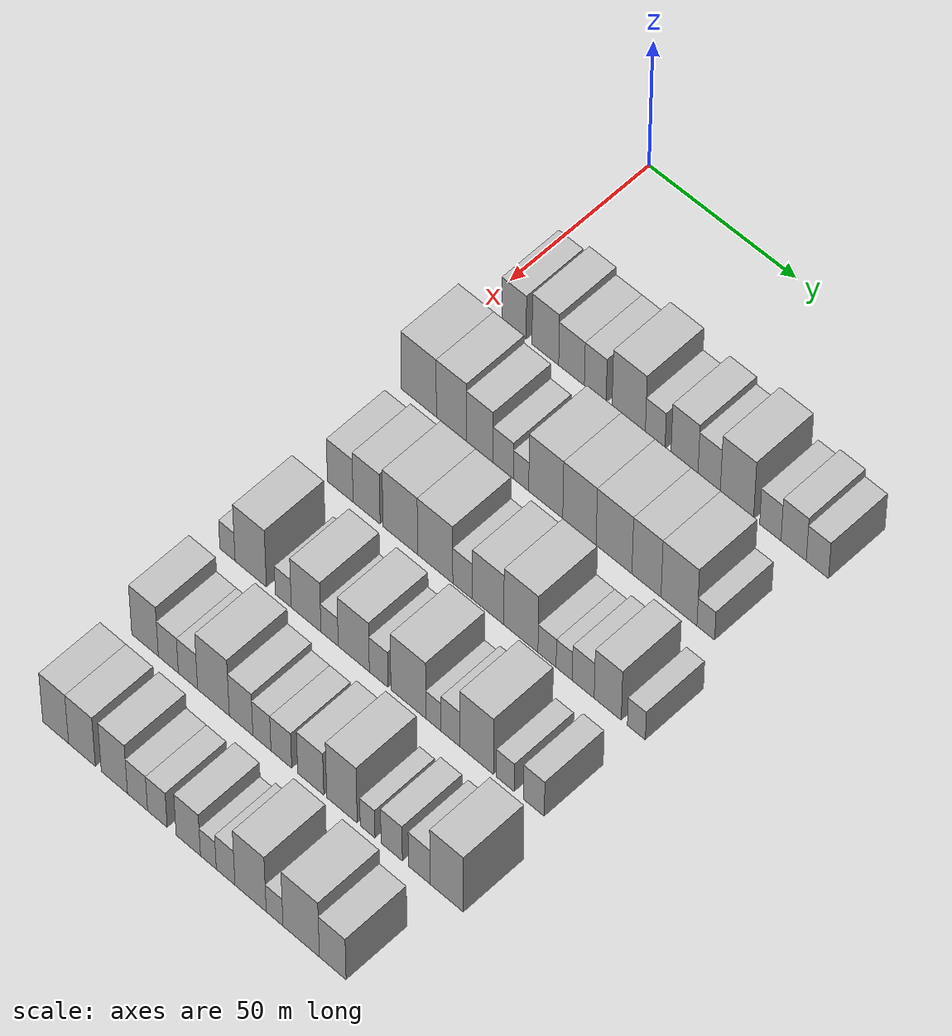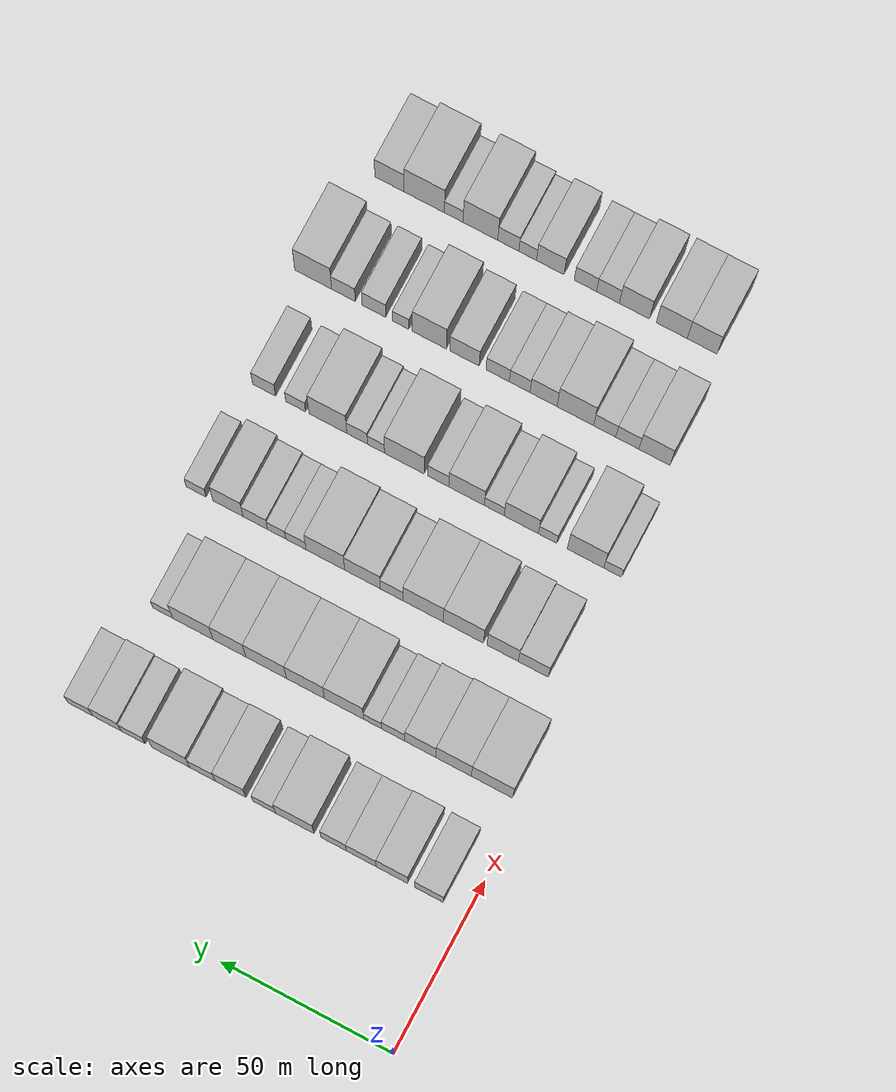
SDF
<sdf version="1.6">
 <world name="default">
  <model name="building_56">
   <static>1</static>
   <pose>50.0000 11.0267 0 0.000000 0.000000 0.000000</pose>
   <link name="link">
    <pose>0 0 9.00 0 0 0</pose>
    <collision name="collision"><geometry><box><size>20.0000 8.3143 18.0000</size></box></geometry></collision>
    <visual name="visual">
     <cast_shadows>0</cast_shadows>
     <geometry><box><size>20.0000 8.3143 18.0000</size></box></geometry>
     <material>
      <script>
       <uri>model://HANNAS_wall/materials/scripts</uri>
       <uri>model://HANNAS_wall/materials/textures</uri>
       <name>vrc/HANNAS_wall</name>
      </script>
     </material>
    </visual>
   </link>
  </model>
  <model name="building_57">
   <static>1</static>
   <pose>50.0000 21.7299 0 0.000000 0.000000 0.000000</pose>
   <link name="link">
    <pose>0 0 10.50 0 0 0</pose>
    <collision name="collision"><geometry><box><size>20.0000 9.0920 21.0000</size></box></geometry></collision>
    <visual name="visual">
     <cast_shadows>0</cast_shadows>
     <geometry><box><size>20.0000 9.0920 21.0000</size></box></geometry>
     <material>
      <script>
       <uri>model://HANNAS_wall/materials/scripts</uri>
       <uri>model://HANNAS_wall/materials/textures</uri>
       <name>vrc/HANNAS_wall</name>
      </script>
     </material>
    </visual>
   </link>
  </model>
  <model name="building_58">
   <static>1</static>
   <pose>50.0000 30.6359 0 0.000000 0.000000 0.000000</pose>
   <link name="link">
    <pose>0 0 9.00 0 0 0</pose>
    <collision name="collision"><geometry><box><size>20.0000 8.7200 18.0000</size></box></geometry></collision>
    <visual name="visual">
     <cast_shadows>0</cast_shadows>
     <geometry><box><size>20.0000 8.7200 18.0000</size></box></geometry>
     <material>
      <script>
       <uri>model://HANNAS_wall/materials/scripts</uri>
       <uri>model://HANNAS_wall/materials/textures</uri>
       <name>vrc/HANNAS_wall</name>
      </script>
     </material>
    </visual>
   </link>
  </model>
  <model name="building_59">
   <static>1</static>
   <pose>50.0000 38.6688 0 0.000000 0.000000 0.000000</pose>
   <link name="link">
    <pose>0 0 9.00 0 0 0</pose>
    <collision name="collision"><geometry><box><size>20.0000 7.3459 18.0000</size></box></geometry></collision>
    <visual name="visual">
     <cast_shadows>0</cast_shadows>
     <geometry><box><size>20.0000 7.3459 18.0000</size></box></geometry>
     <material>
      <script>
       <uri>model://HANNAS_wall/materials/scripts</uri>
       <uri>model://HANNAS_wall/materials/textures</uri>
       <name>vrc/HANNAS_wall</name>
      </script>
     </material>
    </visual>
   </link>
  </model>
  <model name="building_60">
   <static>1</static>
   <pose>50.0000 49.9367 0 0.000000 0.000000 0.000000</pose>
   <link name="link">
    <pose>0 0 12.00 0 0 0</pose>
    <collision name="collision"><geometry><box><size>20.0000 11.1899 24.0000</size></box></geometry></collision>
    <visual name="visual">
     <cast_shadows>0</cast_shadows>
     <geometry><box><size>20.0000 11.1899 24.0000</size></box></geometry>
     <material>
      <script>
       <uri>model://HANNAS_wall/materials/scripts</uri>
       <uri>model://HANNAS_wall/materials/textures</uri>
       <name>vrc/HANNAS_wall</name>
      </script>
     </material>
    </visual>
   </link>
  </model>
  <model name="building_61">
   <static>1</static>
   <pose>50.0000 58.8382 0 0.000000 0.000000 0.000000</pose>
   <link name="link">
    <pose>0 0 7.50 0 0 0</pose>
    <collision name="collision"><geometry><box><size>20.0000 6.6130 15.0000</size></box></geometry></collision>
    <visual name="visual">
     <cast_shadows>0</cast_shadows>
     <geometry><box><size>20.0000 6.6130 15.0000</size></box></geometry>
     <material>
      <script>
       <uri>model://HANNAS_wall/materials/scripts</uri>
       <uri>model://HANNAS_wall/materials/textures</uri>
       <name>vrc/HANNAS_wall</name>
      </script>
     </material>
    </visual>
   </link>
  </model>
  <model name="building_62">
   <static>1</static>
   <pose>50.0000 68.6400 0 0.000000 0.000000 0.000000</pose>
   <link name="link">
    <pose>0 0 10.50 0 0 0</pose>
    <collision name="collision"><geometry><box><size>20.0000 8.9907 21.0000</size></box></geometry></collision>
    <visual name="visual">
     <cast_shadows>0</cast_shadows>
     <geometry><box><size>20.0000 8.9907 21.0000</size></box></geometry>
     <material>
      <script>
       <uri>model://HANNAS_wall/materials/scripts</uri>
       <uri>model://HANNAS_wall/materials/textures</uri>
       <name>vrc/HANNAS_wall</name>
      </script>
     </material>
    </visual>
   </link>
  </model>
  <model name="building_63">
   <static>1</static>
   <pose>50.0000 76.8447 0 0.000000 0.000000 0.000000</pose>
   <link name="link">
    <pose>0 0 9.00 0 0 0</pose>
    <collision name="collision"><geometry><box><size>20.0000 7.4186 18.0000</size></box></geometry></collision>
    <visual name="visual">
     <cast_shadows>0</cast_shadows>
     <geometry><box><size>20.0000 7.4186 18.0000</size></box></geometry>
     <material>
      <script>
       <uri>model://HANNAS_wall/materials/scripts</uri>
       <uri>model://HANNAS_wall/materials/textures</uri>
       <name>vrc/HANNAS_wall</name>
      </script>
     </material>
    </visual>
   </link>
  </model>
  <model name="building_64">
   <static>1</static>
   <pose>50.0000 86.0745 0 0.000000 0.000000 0.000000</pose>
   <link name="link">
    <pose>0 0 12.00 0 0 0</pose>
    <collision name="collision"><geometry><box><size>20.0000 11.0412 24.0000</size></box></geometry></collision>
    <visual name="visual">
     <cast_shadows>0</cast_shadows>
     <geometry><box><size>20.0000 11.0412 24.0000</size></box></geometry>
     <material>
      <script>
       <uri>model://HANNAS_wall/materials/scripts</uri>
       <uri>model://HANNAS_wall/materials/textures</uri>
       <name>vrc/HANNAS_wall</name>
      </script>
     </material>
    </visual>
   </link>
  </model>
  <model name="building_65">
   <static>1</static>
   <pose>50.0000 97.1075 0 0.000000 0.000000 0.000000</pose>
   <link name="link">
    <pose>0 0 7.50 0 0 0</pose>
    <collision name="collision"><geometry><box><size>20.0000 7.0248 15.0000</size></box></geometry></collision>
    <visual name="visual">
     <cast_shadows>0</cast_shadows>
     <geometry><box><size>20.0000 7.0248 15.0000</size></box></geometry>
     <material>
      <script>
       <uri>model://HANNAS_wall/materials/scripts</uri>
       <uri>model://HANNAS_wall/materials/textures</uri>
       <name>vrc/HANNAS_wall</name>
      </script>
     </material>
    </visual>
   </link>
  </model>
  <model name="building_66">
   <static>1</static>
   <pose>50.0000 104.7695 0 0.000000 0.000000 0.000000</pose>
   <link name="link">
    <pose>0 0 9.00 0 0 0</pose>
    <collision name="collision"><geometry><box><size>20.0000 8.2992 18.0000</size></box></geometry></collision>
    <visual name="visual">
     <cast_shadows>0</cast_shadows>
     <geometry><box><size>20.0000 8.2992 18.0000</size></box></geometry>
     <material>
      <script>
       <uri>model://HANNAS_wall/materials/scripts</uri>
       <uri>model://HANNAS_wall/materials/textures</uri>
       <name>vrc/HANNAS_wall</name>
      </script>
     </material>
    </visual>
   </link>
  </model>
  <model name="building_67">
   <static>1</static>
   <pose>50.0000 112.5774 0 0.000000 0.000000 0.000000</pose>
   <link name="link">
    <pose>0 0 7.50 0 0 0</pose>
    <collision name="collision"><geometry><box><size>20.0000 7.3165 15.0000</size></box></geometry></collision>
    <visual name="visual">
     <cast_shadows>0</cast_shadows>
     <geometry><box><size>20.0000 7.3165 15.0000</size></box></geometry>
     <material>
      <script>
       <uri>model://HANNAS_wall/materials/scripts</uri>
       <uri>model://HANNAS_wall/materials/textures</uri>
       <name>vrc/HANNAS_wall</name>
      </script>
     </material>
    </visual>
   </link>
  </model>
  <model name="building_180">
   <static>1</static>
   <pose>82.0000 9.7335 0 0.000000 0.000000 0.000000</pose>
   <link name="link">
    <pose>0 0 12.00 0 0 0</pose>
    <collision name="collision"><geometry><box><size>20.0000 11.9673 24.0000</size></box></geometry></collision>
    <visual name="visual">
     <cast_shadows>0</cast_shadows>
     <geometry><box><size>20.0000 11.9673 24.0000</size></box></geometry>
     <material>
      <script>
       <uri>model://HANNAS_wall/materials/scripts</uri>
       <uri>model://HANNAS_wall/materials/textures</uri>
       <name>vrc/HANNAS_wall</name>
      </script>
     </material>
    </visual>
   </link>
  </model>
  <model name="building_181">
   <static>1</static>
   <pose>82.0000 20.8601 0 0.000000 0.000000 0.000000</pose>
   <link name="link">
    <pose>0 0 12.00 0 0 0</pose>
    <collision name="collision"><geometry><box><size>20.0000 10.2859 24.0000</size></box></geometry></collision>
    <visual name="visual">
     <cast_shadows>0</cast_shadows>
     <geometry><box><size>20.0000 10.2859 24.0000</size></box></geometry>
     <material>
      <script>
       <uri>model://HANNAS_wall/materials/scripts</uri>
       <uri>model://HANNAS_wall/materials/textures</uri>
       <name>vrc/HANNAS_wall</name>
      </script>
     </material>
    </visual>
   </link>
  </model>
  <model name="building_182">
   <static>1</static>
   <pose>82.0000 30.4940 0 0.000000 0.000000 0.000000</pose>
   <link name="link">
    <pose>0 0 10.50 0 0 0</pose>
    <collision name="collision"><geometry><box><size>20.0000 8.9818 21.0000</size></box></geometry></collision>
    <visual name="visual">
     <cast_shadows>0</cast_shadows>
     <geometry><box><size>20.0000 8.9818 21.0000</size></box></geometry>
     <material>
      <script>
       <uri>model://HANNAS_wall/materials/scripts</uri>
       <uri>model://HANNAS_wall/materials/textures</uri>
       <name>vrc/HANNAS_wall</name>
      </script>
     </material>
    </visual>
   </link>
  </model>
  <model name="building_183">
   <static>1</static>
   <pose>82.0000 38.4248 0 0.000000 0.000000 0.000000</pose>
   <link name="link">
    <pose>0 0 7.50 0 0 0</pose>
    <collision name="collision"><geometry><box><size>20.0000 6.8798 15.0000</size></box></geometry></collision>
    <visual name="visual">
     <cast_shadows>0</cast_shadows>
     <geometry><box><size>20.0000 6.8798 15.0000</size></box></geometry>
     <material>
      <script>
       <uri>model://HANNAS_wall/materials/scripts</uri>
       <uri>model://HANNAS_wall/materials/textures</uri>
       <name>vrc/HANNAS_wall</name>
      </script>
     </material>
    </visual>
   </link>
  </model>
  <model name="building_184">
   <static>1</static>
   <pose>82.0000 44.4490 0 0.000000 0.000000 0.000000</pose>
   <link name="link">
    <pose>0 0 6.00 0 0 0</pose>
    <collision name="collision"><geometry><box><size>20.0000 5.1686 12.0000</size></box></geometry></collision>
    <visual name="visual">
     <cast_shadows>0</cast_shadows>
     <geometry><box><size>20.0000 5.1686 12.0000</size></box></geometry>
     <material>
      <script>
       <uri>model://HANNAS_wall/materials/scripts</uri>
       <uri>model://HANNAS_wall/materials/textures</uri>
       <name>vrc/HANNAS_wall</name>
      </script>
     </material>
    </visual>
   </link>
  </model>
  <model name="building_185">
   <static>1</static>
   <pose>82.0000 52.7431 0 0.000000 0.000000 0.000000</pose>
   <link name="link">
    <pose>0 0 12.00 0 0 0</pose>
    <collision name="collision"><geometry><box><size>20.0000 11.4195 24.0000</size></box></geometry></collision>
    <visual name="visual">
     <cast_shadows>0</cast_shadows>
     <geometry><box><size>20.0000 11.4195 24.0000</size></box></geometry>
     <material>
      <script>
       <uri>model://HANNAS_wall/materials/scripts</uri>
       <uri>model://HANNAS_wall/materials/textures</uri>
       <name>vrc/HANNAS_wall</name>
      </script>
     </material>
    </visual>
   </link>
  </model>
  <model name="building_186">
   <static>1</static>
   <pose>82.0000 64.0200 0 0.000000 0.000000 0.000000</pose>
   <link name="link">
    <pose>0 0 12.00 0 0 0</pose>
    <collision name="collision"><geometry><box><size>20.0000 11.1344 24.0000</size></box></geometry></collision>
    <visual name="visual">
     <cast_shadows>0</cast_shadows>
     <geometry><box><size>20.0000 11.1344 24.0000</size></box></geometry>
     <material>
      <script>
       <uri>model://HANNAS_wall/materials/scripts</uri>
       <uri>model://HANNAS_wall/materials/textures</uri>
       <name>vrc/HANNAS_wall</name>
      </script>
     </material>
    </visual>
   </link>
  </model>
  <model name="building_187">
   <static>1</static>
   <pose>82.0000 75.5389 0 0.000000 0.000000 0.000000</pose>
   <link name="link">
    <pose>0 0 12.00 0 0 0</pose>
    <collision name="collision"><geometry><box><size>20.0000 11.9035 24.0000</size></box></geometry></collision>
    <visual name="visual">
     <cast_shadows>0</cast_shadows>
     <geometry><box><size>20.0000 11.9035 24.0000</size></box></geometry>
     <material>
      <script>
       <uri>model://HANNAS_wall/materials/scripts</uri>
       <uri>model://HANNAS_wall/materials/textures</uri>
       <name>vrc/HANNAS_wall</name>
      </script>
     </material>
    </visual>
   </link>
  </model>
  <model name="building_188">
   <static>1</static>
   <pose>82.0000 86.3078 0 0.000000 0.000000 0.000000</pose>
   <link name="link">
    <pose>0 0 12.00 0 0 0</pose>
    <collision name="collision"><geometry><box><size>20.0000 9.6342 24.0000</size></box></geometry></collision>
    <visual name="visual">
     <cast_shadows>0</cast_shadows>
     <geometry><box><size>20.0000 9.6342 24.0000</size></box></geometry>
     <material>
      <script>
       <uri>model://HANNAS_wall/materials/scripts</uri>
       <uri>model://HANNAS_wall/materials/textures</uri>
       <name>vrc/HANNAS_wall</name>
      </script>
     </material>
    </visual>
   </link>
  </model>
  <model name="building_189">
   <static>1</static>
   <pose>82.0000 97.0439 0 0.000000 0.000000 0.000000</pose>
   <link name="link">
    <pose>0 0 12.00 0 0 0</pose>
    <collision name="collision"><geometry><box><size>20.0000 11.8379 24.0000</size></box></geometry></collision>
    <visual name="visual">
     <cast_shadows>0</cast_shadows>
     <geometry><box><size>20.0000 11.8379 24.0000</size></box></geometry>
     <material>
      <script>
       <uri>model://HANNAS_wall/materials/scripts</uri>
       <uri>model://HANNAS_wall/materials/textures</uri>
       <name>vrc/HANNAS_wall</name>
      </script>
     </material>
    </visual>
   </link>
  </model>
  <model name="building_190">
   <static>1</static>
   <pose>82.0000 105.8691 0 0.000000 0.000000 0.000000</pose>
   <link name="link">
    <pose>0 0 6.00 0 0 0</pose>
    <collision name="collision"><geometry><box><size>20.0000 5.8126 12.0000</size></box></geometry></collision>
    <visual name="visual">
     <cast_shadows>0</cast_shadows>
     <geometry><box><size>20.0000 5.8126 12.0000</size></box></geometry>
     <material>
      <script>
       <uri>model://HANNAS_wall/materials/scripts</uri>
       <uri>model://HANNAS_wall/materials/textures</uri>
       <name>vrc/HANNAS_wall</name>
      </script>
     </material>
    </visual>
   </link>
  </model>
  <model name="building_304">
   <static>1</static>
   <pose>114.0000 14.5427 0 0.000000 0.000000 0.000000</pose>
   <link name="link">
    <pose>0 0 9.00 0 0 0</pose>
    <collision name="collision"><geometry><box><size>20.0000 8.7635 18.0000</size></box></geometry></collision>
    <visual name="visual">
     <cast_shadows>0</cast_shadows>
     <geometry><box><size>20.0000 8.7635 18.0000</size></box></geometry>
     <material>
      <script>
       <uri>model://HANNAS_wall/materials/scripts</uri>
       <uri>model://HANNAS_wall/materials/textures</uri>
       <name>vrc/HANNAS_wall</name>
      </script>
     </material>
    </visual>
   </link>
  </model>
  <model name="building_305">
   <static>1</static>
   <pose>114.0000 23.5124 0 0.000000 0.000000 0.000000</pose>
   <link name="link">
    <pose>0 0 10.50 0 0 0</pose>
    <collision name="collision"><geometry><box><size>20.0000 9.1759 21.0000</size></box></geometry></collision>
    <visual name="visual">
     <cast_shadows>0</cast_shadows>
     <geometry><box><size>20.0000 9.1759 21.0000</size></box></geometry>
     <material>
      <script>
       <uri>model://HANNAS_wall/materials/scripts</uri>
       <uri>model://HANNAS_wall/materials/textures</uri>
       <name>vrc/HANNAS_wall</name>
      </script>
     </material>
    </visual>
   </link>
  </model>
  <model name="building_306">
   <static>1</static>
   <pose>114.0000 34.9645 0 0.000000 0.000000 0.000000</pose>
   <link name="link">
    <pose>0 0 12.00 0 0 0</pose>
    <collision name="collision"><geometry><box><size>20.0000 11.7283 24.0000</size></box></geometry></collision>
    <visual name="visual">
     <cast_shadows>0</cast_shadows>
     <geometry><box><size>20.0000 11.7283 24.0000</size></box></geometry>
     <material>
      <script>
       <uri>model://HANNAS_wall/materials/scripts</uri>
       <uri>model://HANNAS_wall/materials/textures</uri>
       <name>vrc/HANNAS_wall</name>
      </script>
     </material>
    </visual>
   </link>
  </model>
  <model name="building_307">
   <static>1</static>
   <pose>114.0000 46.7430 0 0.000000 0.000000 0.000000</pose>
   <link name="link">
    <pose>0 0 12.00 0 0 0</pose>
    <collision name="collision"><geometry><box><size>20.0000 11.8288 24.0000</size></box></geometry></collision>
    <visual name="visual">
     <cast_shadows>0</cast_shadows>
     <geometry><box><size>20.0000 11.8288 24.0000</size></box></geometry>
     <material>
      <script>
       <uri>model://HANNAS_wall/materials/scripts</uri>
       <uri>model://HANNAS_wall/materials/textures</uri>
       <name>vrc/HANNAS_wall</name>
      </script>
     </material>
    </visual>
   </link>
  </model>
  <model name="building_308">
   <static>1</static>
   <pose>114.0000 55.9606 0 0.000000 0.000000 0.000000</pose>
   <link name="link">
    <pose>0 0 7.50 0 0 0</pose>
    <collision name="collision"><geometry><box><size>20.0000 6.6064 15.0000</size></box></geometry></collision>
    <visual name="visual">
     <cast_shadows>0</cast_shadows>
     <geometry><box><size>20.0000 6.6064 15.0000</size></box></geometry>
     <material>
      <script>
       <uri>model://HANNAS_wall/materials/scripts</uri>
       <uri>model://HANNAS_wall/materials/textures</uri>
       <name>vrc/HANNAS_wall</name>
      </script>
     </material>
    </visual>
   </link>
  </model>
  <model name="building_309">
   <static>1</static>
   <pose>114.0000 64.4863 0 0.000000 0.000000 0.000000</pose>
   <link name="link">
    <pose>0 0 10.50 0 0 0</pose>
    <collision name="collision"><geometry><box><size>20.0000 10.4450 21.0000</size></box></geometry></collision>
    <visual name="visual">
     <cast_shadows>0</cast_shadows>
     <geometry><box><size>20.0000 10.4450 21.0000</size></box></geometry>
     <material>
      <script>
       <uri>model://HANNAS_wall/materials/scripts</uri>
       <uri>model://HANNAS_wall/materials/textures</uri>
       <name>vrc/HANNAS_wall</name>
      </script>
     </material>
    </visual>
   </link>
  </model>
  <model name="building_310">
   <static>1</static>
   <pose>114.0000 75.3846 0 0.000000 0.000000 0.000000</pose>
   <link name="link">
    <pose>0 0 12.00 0 0 0</pose>
    <collision name="collision"><geometry><box><size>20.0000 11.3515 24.0000</size></box></geometry></collision>
    <visual name="visual">
     <cast_shadows>0</cast_shadows>
     <geometry><box><size>20.0000 11.3515 24.0000</size></box></geometry>
     <material>
      <script>
       <uri>model://HANNAS_wall/materials/scripts</uri>
       <uri>model://HANNAS_wall/materials/textures</uri>
       <name>vrc/HANNAS_wall</name>
      </script>
     </material>
    </visual>
   </link>
  </model>
  <model name="building_311">
   <static>1</static>
   <pose>114.0000 84.0602 0 0.000000 0.000000 0.000000</pose>
   <link name="link">
    <pose>0 0 6.00 0 0 0</pose>
    <collision name="collision"><geometry><box><size>20.0000 5.9997 12.0000</size></box></geometry></collision>
    <visual name="visual">
     <cast_shadows>0</cast_shadows>
     <geometry><box><size>20.0000 5.9997 12.0000</size></box></geometry>
     <material>
      <script>
       <uri>model://HANNAS_wall/materials/scripts</uri>
       <uri>model://HANNAS_wall/materials/textures</uri>
       <name>vrc/HANNAS_wall</name>
      </script>
     </material>
    </visual>
   </link>
  </model>
  <model name="building_312">
   <static>1</static>
   <pose>114.0000 89.7220 0 0.000000 0.000000 0.000000</pose>
   <link name="link">
    <pose>0 0 6.00 0 0 0</pose>
    <collision name="collision"><geometry><box><size>20.0000 5.3241 12.0000</size></box></geometry></collision>
    <visual name="visual">
     <cast_shadows>0</cast_shadows>
     <geometry><box><size>20.0000 5.3241 12.0000</size></box></geometry>
     <material>
      <script>
       <uri>model://HANNAS_wall/materials/scripts</uri>
       <uri>model://HANNAS_wall/materials/textures</uri>
       <name>vrc/HANNAS_wall</name>
      </script>
     </material>
    </visual>
   </link>
  </model>
  <model name="building_313">
   <static>1</static>
   <pose>114.0000 95.9960 0 0.000000 0.000000 0.000000</pose>
   <link name="link">
    <pose>0 0 7.50 0 0 0</pose>
    <collision name="collision"><geometry><box><size>20.0000 7.2240 15.0000</size></box></geometry></collision>
    <visual name="visual">
     <cast_shadows>0</cast_shadows>
     <geometry><box><size>20.0000 7.2240 15.0000</size></box></geometry>
     <material>
      <script>
       <uri>model://HANNAS_wall/materials/scripts</uri>
       <uri>model://HANNAS_wall/materials/textures</uri>
       <name>vrc/HANNAS_wall</name>
      </script>
     </material>
    </visual>
   </link>
  </model>
  <model name="building_314">
   <static>1</static>
   <pose>114.0000 104.0517 0 0.000000 0.000000 0.000000</pose>
   <link name="link">
    <pose>0 0 10.50 0 0 0</pose>
    <collision name="collision"><geometry><box><size>20.0000 8.8873 21.0000</size></box></geometry></collision>
    <visual name="visual">
     <cast_shadows>0</cast_shadows>
     <geometry><box><size>20.0000 8.8873 21.0000</size></box></geometry>
     <material>
      <script>
       <uri>model://HANNAS_wall/materials/scripts</uri>
       <uri>model://HANNAS_wall/materials/textures</uri>
       <name>vrc/HANNAS_wall</name>
      </script>
     </material>
    </visual>
   </link>
  </model>
  <model name="building_315">
   <static>1</static>
   <pose>114.0000 113.4347 0 0.000000 0.000000 0.000000</pose>
   <link name="link">
    <pose>0 0 6.00 0 0 0</pose>
    <collision name="collision"><geometry><box><size>20.0000 5.8788 12.0000</size></box></geometry></collision>
    <visual name="visual">
     <cast_shadows>0</cast_shadows>
     <geometry><box><size>20.0000 5.8788 12.0000</size></box></geometry>
     <material>
      <script>
       <uri>model://HANNAS_wall/materials/scripts</uri>
       <uri>model://HANNAS_wall/materials/textures</uri>
       <name>vrc/HANNAS_wall</name>
      </script>
     </material>
    </visual>
   </link>
  </model>
  <model name="building_422">
   <static>1</static>
   <pose>146.0000 8.1309 0 0.000000 0.000000 0.000000</pose>
   <link name="link">
    <pose>0 0 6.00 0 0 0</pose>
    <collision name="collision"><geometry><box><size>20.0000 5.2154 12.0000</size></box></geometry></collision>
    <visual name="visual">
     <cast_shadows>0</cast_shadows>
     <geometry><box><size>20.0000 5.2154 12.0000</size></box></geometry>
     <material>
      <script>
       <uri>model://HANNAS_wall/materials/scripts</uri>
       <uri>model://HANNAS_wall/materials/textures</uri>
       <name>vrc/HANNAS_wall</name>
      </script>
     </material>
    </visual>
   </link>
  </model>
  <model name="building_423">
   <static>1</static>
   <pose>146.0000 16.0932 0 0.000000 0.000000 0.000000</pose>
   <link name="link">
    <pose>0 0 12.00 0 0 0</pose>
    <collision name="collision"><geometry><box><size>20.0000 10.7092 24.0000</size></box></geometry></collision>
    <visual name="visual">
     <cast_shadows>0</cast_shadows>
     <geometry><box><size>20.0000 10.7092 24.0000</size></box></geometry>
     <material>
      <script>
       <uri>model://HANNAS_wall/materials/scripts</uri>
       <uri>model://HANNAS_wall/materials/textures</uri>
       <name>vrc/HANNAS_wall</name>
      </script>
     </material>
    </visual>
   </link>
  </model>
  <model name="building_424">
   <static>1</static>
   <pose>146.0000 27.1707 0 0.000000 0.000000 0.000000</pose>
   <link name="link">
    <pose>0 0 6.00 0 0 0</pose>
    <collision name="collision"><geometry><box><size>20.0000 5.4456 12.0000</size></box></geometry></collision>
    <visual name="visual">
     <cast_shadows>0</cast_shadows>
     <geometry><box><size>20.0000 5.4456 12.0000</size></box></geometry>
     <material>
      <script>
       <uri>model://HANNAS_wall/materials/scripts</uri>
       <uri>model://HANNAS_wall/materials/textures</uri>
       <name>vrc/HANNAS_wall</name>
      </script>
     </material>
    </visual>
   </link>
  </model>
  <model name="building_425">
   <static>1</static>
   <pose>146.0000 34.9148 0 0.000000 0.000000 0.000000</pose>
   <link name="link">
    <pose>0 0 10.50 0 0 0</pose>
    <collision name="collision"><geometry><box><size>20.0000 10.0427 21.0000</size></box></geometry></collision>
    <visual name="visual">
     <cast_shadows>0</cast_shadows>
     <geometry><box><size>20.0000 10.0427 21.0000</size></box></geometry>
     <material>
      <script>
       <uri>model://HANNAS_wall/materials/scripts</uri>
       <uri>model://HANNAS_wall/materials/textures</uri>
       <name>vrc/HANNAS_wall</name>
      </script>
     </material>
    </visual>
   </link>
  </model>
  <model name="building_426">
   <static>1</static>
   <pose>146.0000 42.8468 0 0.000000 0.000000 0.000000</pose>
   <link name="link">
    <pose>0 0 6.00 0 0 0</pose>
    <collision name="collision"><geometry><box><size>20.0000 5.8213 12.0000</size></box></geometry></collision>
    <visual name="visual">
     <cast_shadows>0</cast_shadows>
     <geometry><box><size>20.0000 5.8213 12.0000</size></box></geometry>
     <material>
      <script>
       <uri>model://HANNAS_wall/materials/scripts</uri>
       <uri>model://HANNAS_wall/materials/textures</uri>
       <name>vrc/HANNAS_wall</name>
      </script>
     </material>
    </visual>
   </link>
  </model>
  <model name="building_427">
   <static>1</static>
   <pose>146.0000 50.9816 0 0.000000 0.000000 0.000000</pose>
   <link name="link">
    <pose>0 0 10.50 0 0 0</pose>
    <collision name="collision"><geometry><box><size>20.0000 10.4484 21.0000</size></box></geometry></collision>
    <visual name="visual">
     <cast_shadows>0</cast_shadows>
     <geometry><box><size>20.0000 10.4484 21.0000</size></box></geometry>
     <material>
      <script>
       <uri>model://HANNAS_wall/materials/scripts</uri>
       <uri>model://HANNAS_wall/materials/textures</uri>
       <name>vrc/HANNAS_wall</name>
      </script>
     </material>
    </visual>
   </link>
  </model>
  <model name="building_428">
   <static>1</static>
   <pose>146.0000 59.3180 0 0.000000 0.000000 0.000000</pose>
   <link name="link">
    <pose>0 0 7.50 0 0 0</pose>
    <collision name="collision"><geometry><box><size>20.0000 6.2244 15.0000</size></box></geometry></collision>
    <visual name="visual">
     <cast_shadows>0</cast_shadows>
     <geometry><box><size>20.0000 6.2244 15.0000</size></box></geometry>
     <material>
      <script>
       <uri>model://HANNAS_wall/materials/scripts</uri>
       <uri>model://HANNAS_wall/materials/textures</uri>
       <name>vrc/HANNAS_wall</name>
      </script>
     </material>
    </visual>
   </link>
  </model>
  <model name="building_429">
   <static>1</static>
   <pose>146.0000 69.2566 0 0.000000 0.000000 0.000000</pose>
   <link name="link">
    <pose>0 0 12.00 0 0 0</pose>
    <collision name="collision"><geometry><box><size>20.0000 11.6528 24.0000</size></box></geometry></collision>
    <visual name="visual">
     <cast_shadows>0</cast_shadows>
     <geometry><box><size>20.0000 11.6528 24.0000</size></box></geometry>
     <material>
      <script>
       <uri>model://HANNAS_wall/materials/scripts</uri>
       <uri>model://HANNAS_wall/materials/textures</uri>
       <name>vrc/HANNAS_wall</name>
      </script>
     </material>
    </visual>
   </link>
  </model>
  <model name="building_430">
   <static>1</static>
   <pose>146.0000 77.5924 0 0.000000 0.000000 0.000000</pose>
   <link name="link">
    <pose>0 0 6.00 0 0 0</pose>
    <collision name="collision"><geometry><box><size>20.0000 5.0188 12.0000</size></box></geometry></collision>
    <visual name="visual">
     <cast_shadows>0</cast_shadows>
     <geometry><box><size>20.0000 5.0188 12.0000</size></box></geometry>
     <material>
      <script>
       <uri>model://HANNAS_wall/materials/scripts</uri>
       <uri>model://HANNAS_wall/materials/textures</uri>
       <name>vrc/HANNAS_wall</name>
      </script>
     </material>
    </visual>
   </link>
  </model>
  <model name="building_431">
   <static>1</static>
   <pose>146.0000 83.1686 0 0.000000 0.000000 0.000000</pose>
   <link name="link">
    <pose>0 0 7.50 0 0 0</pose>
    <collision name="collision"><geometry><box><size>20.0000 6.1337 15.0000</size></box></geometry></collision>
    <visual name="visual">
     <cast_shadows>0</cast_shadows>
     <geometry><box><size>20.0000 6.1337 15.0000</size></box></geometry>
     <material>
      <script>
       <uri>model://HANNAS_wall/materials/scripts</uri>
       <uri>model://HANNAS_wall/materials/textures</uri>
       <name>vrc/HANNAS_wall</name>
      </script>
     </material>
    </visual>
   </link>
  </model>
  <model name="building_432">
   <static>1</static>
   <pose>146.0000 91.8049 0 0.000000 0.000000 0.000000</pose>
   <link name="link">
    <pose>0 0 12.00 0 0 0</pose>
    <collision name="collision"><geometry><box><size>20.0000 11.1388 24.0000</size></box></geometry></collision>
    <visual name="visual">
     <cast_shadows>0</cast_shadows>
     <geometry><box><size>20.0000 11.1388 24.0000</size></box></geometry>
     <material>
      <script>
       <uri>model://HANNAS_wall/materials/scripts</uri>
       <uri>model://HANNAS_wall/materials/textures</uri>
       <name>vrc/HANNAS_wall</name>
      </script>
     </material>
    </visual>
   </link>
  </model>
  <model name="building_433">
   <static>1</static>
   <pose>146.0000 101.3119 0 0.000000 0.000000 0.000000</pose>
   <link name="link">
    <pose>0 0 6.00 0 0 0</pose>
    <collision name="collision"><geometry><box><size>20.0000 5.8752 12.0000</size></box></geometry></collision>
    <visual name="visual">
     <cast_shadows>0</cast_shadows>
     <geometry><box><size>20.0000 5.8752 12.0000</size></box></geometry>
     <material>
      <script>
       <uri>model://HANNAS_wall/materials/scripts</uri>
       <uri>model://HANNAS_wall/materials/textures</uri>
       <name>vrc/HANNAS_wall</name>
      </script>
     </material>
    </visual>
   </link>
  </model>
  <model name="building_434">
   <static>1</static>
   <pose>146.0000 110.6543 0 0.000000 0.000000 0.000000</pose>
   <link name="link">
    <pose>0 0 7.50 0 0 0</pose>
    <collision name="collision"><geometry><box><size>20.0000 6.8095 15.0000</size></box></geometry></collision>
    <visual name="visual">
     <cast_shadows>0</cast_shadows>
     <geometry><box><size>20.0000 6.8095 15.0000</size></box></geometry>
     <material>
      <script>
       <uri>model://HANNAS_wall/materials/scripts</uri>
       <uri>model://HANNAS_wall/materials/textures</uri>
       <name>vrc/HANNAS_wall</name>
      </script>
     </material>
    </visual>
   </link>
  </model>
  <model name="building_544">
   <static>1</static>
   <pose>178.0000 12.5955 0 0.000000 0.000000 0.000000</pose>
   <link name="link">
    <pose>0 0 10.50 0 0 0</pose>
    <collision name="collision"><geometry><box><size>20.0000 9.0880 21.0000</size></box></geometry></collision>
    <visual name="visual">
     <cast_shadows>0</cast_shadows>
     <geometry><box><size>20.0000 9.0880 21.0000</size></box></geometry>
     <material>
      <script>
       <uri>model://HANNAS_wall/materials/scripts</uri>
       <uri>model://HANNAS_wall/materials/textures</uri>
       <name>vrc/HANNAS_wall</name>
      </script>
     </material>
    </visual>
   </link>
  </model>
  <model name="building_545">
   <static>1</static>
   <pose>178.0000 20.5444 0 0.000000 0.000000 0.000000</pose>
   <link name="link">
    <pose>0 0 7.50 0 0 0</pose>
    <collision name="collision"><geometry><box><size>20.0000 6.8099 15.0000</size></box></geometry></collision>
    <visual name="visual">
     <cast_shadows>0</cast_shadows>
     <geometry><box><size>20.0000 6.8099 15.0000</size></box></geometry>
     <material>
      <script>
       <uri>model://HANNAS_wall/materials/scripts</uri>
       <uri>model://HANNAS_wall/materials/textures</uri>
       <name>vrc/HANNAS_wall</name>
      </script>
     </material>
    </visual>
   </link>
  </model>
  <model name="building_546">
   <static>1</static>
   <pose>178.0000 27.2206 0 0.000000 0.000000 0.000000</pose>
   <link name="link">
    <pose>0 0 7.50 0 0 0</pose>
    <collision name="collision"><geometry><box><size>20.0000 6.5425 15.0000</size></box></geometry></collision>
    <visual name="visual">
     <cast_shadows>0</cast_shadows>
     <geometry><box><size>20.0000 6.5425 15.0000</size></box></geometry>
     <material>
      <script>
       <uri>model://HANNAS_wall/materials/scripts</uri>
       <uri>model://HANNAS_wall/materials/textures</uri>
       <name>vrc/HANNAS_wall</name>
      </script>
     </material>
    </visual>
   </link>
  </model>
  <model name="building_547">
   <static>1</static>
   <pose>178.0000 35.8593 0 0.000000 0.000000 0.000000</pose>
   <link name="link">
    <pose>0 0 12.00 0 0 0</pose>
    <collision name="collision"><geometry><box><size>20.0000 10.7349 24.0000</size></box></geometry></collision>
    <visual name="visual">
     <cast_shadows>0</cast_shadows>
     <geometry><box><size>20.0000 10.7349 24.0000</size></box></geometry>
     <material>
      <script>
       <uri>model://HANNAS_wall/materials/scripts</uri>
       <uri>model://HANNAS_wall/materials/textures</uri>
       <name>vrc/HANNAS_wall</name>
      </script>
     </material>
    </visual>
   </link>
  </model>
  <model name="building_548">
   <static>1</static>
   <pose>178.0000 45.1974 0 0.000000 0.000000 0.000000</pose>
   <link name="link">
    <pose>0 0 9.00 0 0 0</pose>
    <collision name="collision"><geometry><box><size>20.0000 7.9411 18.0000</size></box></geometry></collision>
    <visual name="visual">
     <cast_shadows>0</cast_shadows>
     <geometry><box><size>20.0000 7.9411 18.0000</size></box></geometry>
     <material>
      <script>
       <uri>model://HANNAS_wall/materials/scripts</uri>
       <uri>model://HANNAS_wall/materials/textures</uri>
       <name>vrc/HANNAS_wall</name>
      </script>
     </material>
    </visual>
   </link>
  </model>
  <model name="building_549">
   <static>1</static>
   <pose>178.0000 52.2040 0 0.000000 0.000000 0.000000</pose>
   <link name="link">
    <pose>0 0 7.50 0 0 0</pose>
    <collision name="collision"><geometry><box><size>20.0000 6.0722 15.0000</size></box></geometry></collision>
    <visual name="visual">
     <cast_shadows>0</cast_shadows>
     <geometry><box><size>20.0000 6.0722 15.0000</size></box></geometry>
     <material>
      <script>
       <uri>model://HANNAS_wall/materials/scripts</uri>
       <uri>model://HANNAS_wall/materials/textures</uri>
       <name>vrc/HANNAS_wall</name>
      </script>
     </material>
    </visual>
   </link>
  </model>
  <model name="building_550">
   <static>1</static>
   <pose>178.0000 58.7081 0 0.000000 0.000000 0.000000</pose>
   <link name="link">
    <pose>0 0 7.50 0 0 0</pose>
    <collision name="collision"><geometry><box><size>20.0000 6.9360 15.0000</size></box></geometry></collision>
    <visual name="visual">
     <cast_shadows>0</cast_shadows>
     <geometry><box><size>20.0000 6.9360 15.0000</size></box></geometry>
     <material>
      <script>
       <uri>model://HANNAS_wall/materials/scripts</uri>
       <uri>model://HANNAS_wall/materials/textures</uri>
       <name>vrc/HANNAS_wall</name>
      </script>
     </material>
    </visual>
   </link>
  </model>
  <model name="building_551">
   <static>1</static>
   <pose>178.0000 68.5214 0 0.000000 0.000000 0.000000</pose>
   <link name="link">
    <pose>0 0 9.00 0 0 0</pose>
    <collision name="collision"><geometry><box><size>20.0000 8.6906 18.0000</size></box></geometry></collision>
    <visual name="visual">
     <cast_shadows>0</cast_shadows>
     <geometry><box><size>20.0000 8.6906 18.0000</size></box></geometry>
     <material>
      <script>
       <uri>model://HANNAS_wall/materials/scripts</uri>
       <uri>model://HANNAS_wall/materials/textures</uri>
       <name>vrc/HANNAS_wall</name>
      </script>
     </material>
    </visual>
   </link>
  </model>
  <model name="building_552">
   <static>1</static>
   <pose>178.0000 78.9021 0 0.000000 0.000000 0.000000</pose>
   <link name="link">
    <pose>0 0 12.00 0 0 0</pose>
    <collision name="collision"><geometry><box><size>20.0000 10.0709 24.0000</size></box></geometry></collision>
    <visual name="visual">
     <cast_shadows>0</cast_shadows>
     <geometry><box><size>20.0000 10.0709 24.0000</size></box></geometry>
     <material>
      <script>
       <uri>model://HANNAS_wall/materials/scripts</uri>
       <uri>model://HANNAS_wall/materials/textures</uri>
       <name>vrc/HANNAS_wall</name>
      </script>
     </material>
    </visual>
   </link>
  </model>
  <model name="building_553">
   <static>1</static>
   <pose>178.0000 87.3794 0 0.000000 0.000000 0.000000</pose>
   <link name="link">
    <pose>0 0 6.00 0 0 0</pose>
    <collision name="collision"><geometry><box><size>20.0000 4.8836 12.0000</size></box></geometry></collision>
    <visual name="visual">
     <cast_shadows>0</cast_shadows>
     <geometry><box><size>20.0000 4.8836 12.0000</size></box></geometry>
     <material>
      <script>
       <uri>model://HANNAS_wall/materials/scripts</uri>
       <uri>model://HANNAS_wall/materials/textures</uri>
       <name>vrc/HANNAS_wall</name>
      </script>
     </material>
    </visual>
   </link>
  </model>
  <model name="building_554">
   <static>1</static>
   <pose>178.0000 95.3252 0 0.000000 0.000000 0.000000</pose>
   <link name="link">
    <pose>0 0 7.50 0 0 0</pose>
    <collision name="collision"><geometry><box><size>20.0000 7.0079 15.0000</size></box></geometry></collision>
    <visual name="visual">
     <cast_shadows>0</cast_shadows>
     <geometry><box><size>20.0000 7.0079 15.0000</size></box></geometry>
     <material>
      <script>
       <uri>model://HANNAS_wall/materials/scripts</uri>
       <uri>model://HANNAS_wall/materials/textures</uri>
       <name>vrc/HANNAS_wall</name>
      </script>
     </material>
    </visual>
   </link>
  </model>
  <model name="building_555">
   <static>1</static>
   <pose>178.0000 104.3600 0 0.000000 0.000000 0.000000</pose>
   <link name="link">
    <pose>0 0 7.50 0 0 0</pose>
    <collision name="collision"><geometry><box><size>20.0000 7.0618 15.0000</size></box></geometry></collision>
    <visual name="visual">
     <cast_shadows>0</cast_shadows>
     <geometry><box><size>20.0000 7.0618 15.0000</size></box></geometry>
     <material>
      <script>
       <uri>model://HANNAS_wall/materials/scripts</uri>
       <uri>model://HANNAS_wall/materials/textures</uri>
       <name>vrc/HANNAS_wall</name>
      </script>
     </material>
    </visual>
   </link>
  </model>
  <model name="building_556">
   <static>1</static>
   <pose>178.0000 113.3467 0 0.000000 0.000000 0.000000</pose>
   <link name="link">
    <pose>0 0 12.00 0 0 0</pose>
    <collision name="collision"><geometry><box><size>20.0000 10.9117 24.0000</size></box></geometry></collision>
    <visual name="visual">
     <cast_shadows>0</cast_shadows>
     <geometry><box><size>20.0000 10.9117 24.0000</size></box></geometry>
     <material>
      <script>
       <uri>model://HANNAS_wall/materials/scripts</uri>
       <uri>model://HANNAS_wall/materials/textures</uri>
       <name>vrc/HANNAS_wall</name>
      </script>
     </material>
    </visual>
   </link>
  </model>
  <model name="building_663">
   <static>1</static>
   <pose>210.0000 15.1901 0 0.000000 0.000000 0.000000</pose>
   <link name="link">
    <pose>0 0 10.50 0 0 0</pose>
    <collision name="collision"><geometry><box><size>20.0000 8.7930 21.0000</size></box></geometry></collision>
    <visual name="visual">
     <cast_shadows>0</cast_shadows>
     <geometry><box><size>20.0000 8.7930 21.0000</size></box></geometry>
     <material>
      <script>
       <uri>model://HANNAS_wall/materials/scripts</uri>
       <uri>model://HANNAS_wall/materials/textures</uri>
       <name>vrc/HANNAS_wall</name>
      </script>
     </material>
    </visual>
   </link>
  </model>
  <model name="building_664">
   <static>1</static>
   <pose>210.0000 24.1447 0 0.000000 0.000000 0.000000</pose>
   <link name="link">
    <pose>0 0 10.50 0 0 0</pose>
    <collision name="collision"><geometry><box><size>20.0000 9.1162 21.0000</size></box></geometry></collision>
    <visual name="visual">
     <cast_shadows>0</cast_shadows>
     <geometry><box><size>20.0000 9.1162 21.0000</size></box></geometry>
     <material>
      <script>
       <uri>model://HANNAS_wall/materials/scripts</uri>
       <uri>model://HANNAS_wall/materials/textures</uri>
       <name>vrc/HANNAS_wall</name>
      </script>
     </material>
    </visual>
   </link>
  </model>
  <model name="building_665">
   <static>1</static>
   <pose>210.0000 35.1388 0 0.000000 0.000000 0.000000</pose>
   <link name="link">
    <pose>0 0 10.50 0 0 0</pose>
    <collision name="collision"><geometry><box><size>20.0000 8.8721 21.0000</size></box></geometry></collision>
    <visual name="visual">
     <cast_shadows>0</cast_shadows>
     <geometry><box><size>20.0000 8.8721 21.0000</size></box></geometry>
     <material>
      <script>
       <uri>model://HANNAS_wall/materials/scripts</uri>
       <uri>model://HANNAS_wall/materials/textures</uri>
       <name>vrc/HANNAS_wall</name>
      </script>
     </material>
    </visual>
   </link>
  </model>
  <model name="building_666">
   <static>1</static>
   <pose>210.0000 42.9589 0 0.000000 0.000000 0.000000</pose>
   <link name="link">
    <pose>0 0 7.50 0 0 0</pose>
    <collision name="collision"><geometry><box><size>20.0000 6.7681 15.0000</size></box></geometry></collision>
    <visual name="visual">
     <cast_shadows>0</cast_shadows>
     <geometry><box><size>20.0000 6.7681 15.0000</size></box></geometry>
     <material>
      <script>
       <uri>model://HANNAS_wall/materials/scripts</uri>
       <uri>model://HANNAS_wall/materials/textures</uri>
       <name>vrc/HANNAS_wall</name>
      </script>
     </material>
    </visual>
   </link>
  </model>
  <model name="building_667">
   <static>1</static>
   <pose>210.0000 49.6393 0 0.000000 0.000000 0.000000</pose>
   <link name="link">
    <pose>0 0 7.50 0 0 0</pose>
    <collision name="collision"><geometry><box><size>20.0000 6.5926 15.0000</size></box></geometry></collision>
    <visual name="visual">
     <cast_shadows>0</cast_shadows>
     <geometry><box><size>20.0000 6.5926 15.0000</size></box></geometry>
     <material>
      <script>
       <uri>model://HANNAS_wall/materials/scripts</uri>
       <uri>model://HANNAS_wall/materials/textures</uri>
       <name>vrc/HANNAS_wall</name>
      </script>
     </material>
    </visual>
   </link>
  </model>
  <model name="building_668">
   <static>1</static>
   <pose>210.0000 60.0046 0 0.000000 0.000000 0.000000</pose>
   <link name="link">
    <pose>0 0 9.00 0 0 0</pose>
    <collision name="collision"><geometry><box><size>20.0000 8.1381 18.0000</size></box></geometry></collision>
    <visual name="visual">
     <cast_shadows>0</cast_shadows>
     <geometry><box><size>20.0000 8.1381 18.0000</size></box></geometry>
     <material>
      <script>
       <uri>model://HANNAS_wall/materials/scripts</uri>
       <uri>model://HANNAS_wall/materials/textures</uri>
       <name>vrc/HANNAS_wall</name>
      </script>
     </material>
    </visual>
   </link>
  </model>
  <model name="building_669">
   <static>1</static>
   <pose>210.0000 66.7083 0 0.000000 0.000000 0.000000</pose>
   <link name="link">
    <pose>0 0 6.00 0 0 0</pose>
    <collision name="collision"><geometry><box><size>20.0000 5.2694 12.0000</size></box></geometry></collision>
    <visual name="visual">
     <cast_shadows>0</cast_shadows>
     <geometry><box><size>20.0000 5.2694 12.0000</size></box></geometry>
     <material>
      <script>
       <uri>model://HANNAS_wall/materials/scripts</uri>
       <uri>model://HANNAS_wall/materials/textures</uri>
       <name>vrc/HANNAS_wall</name>
      </script>
     </material>
    </visual>
   </link>
  </model>
  <model name="building_670">
   <static>1</static>
   <pose>210.0000 72.4535 0 0.000000 0.000000 0.000000</pose>
   <link name="link">
    <pose>0 0 7.50 0 0 0</pose>
    <collision name="collision"><geometry><box><size>20.0000 6.2210 15.0000</size></box></geometry></collision>
    <visual name="visual">
     <cast_shadows>0</cast_shadows>
     <geometry><box><size>20.0000 6.2210 15.0000</size></box></geometry>
     <material>
      <script>
       <uri>model://HANNAS_wall/materials/scripts</uri>
       <uri>model://HANNAS_wall/materials/textures</uri>
       <name>vrc/HANNAS_wall</name>
      </script>
     </material>
    </visual>
   </link>
  </model>
  <model name="building_671">
   <static>1</static>
   <pose>210.0000 80.7368 0 0.000000 0.000000 0.000000</pose>
   <link name="link">
    <pose>0 0 12.00 0 0 0</pose>
    <collision name="collision"><geometry><box><size>20.0000 10.3454 24.0000</size></box></geometry></collision>
    <visual name="visual">
     <cast_shadows>0</cast_shadows>
     <geometry><box><size>20.0000 10.3454 24.0000</size></box></geometry>
     <material>
      <script>
       <uri>model://HANNAS_wall/materials/scripts</uri>
       <uri>model://HANNAS_wall/materials/textures</uri>
       <name>vrc/HANNAS_wall</name>
      </script>
     </material>
    </visual>
   </link>
  </model>
  <model name="building_672">
   <static>1</static>
   <pose>210.0000 88.6800 0 0.000000 0.000000 0.000000</pose>
   <link name="link">
    <pose>0 0 6.00 0 0 0</pose>
    <collision name="collision"><geometry><box><size>20.0000 5.5411 12.0000</size></box></geometry></collision>
    <visual name="visual">
     <cast_shadows>0</cast_shadows>
     <geometry><box><size>20.0000 5.5411 12.0000</size></box></geometry>
     <material>
      <script>
       <uri>model://HANNAS_wall/materials/scripts</uri>
       <uri>model://HANNAS_wall/materials/textures</uri>
       <name>vrc/HANNAS_wall</name>
      </script>
     </material>
    </visual>
   </link>
  </model>
  <model name="building_673">
   <static>1</static>
   <pose>210.0000 97.4277 0 0.000000 0.000000 0.000000</pose>
   <link name="link">
    <pose>0 0 12.00 0 0 0</pose>
    <collision name="collision"><geometry><box><size>20.0000 11.9542 24.0000</size></box></geometry></collision>
    <visual name="visual">
     <cast_shadows>0</cast_shadows>
     <geometry><box><size>20.0000 11.9542 24.0000</size></box></geometry>
     <material>
      <script>
       <uri>model://HANNAS_wall/materials/scripts</uri>
       <uri>model://HANNAS_wall/materials/textures</uri>
       <name>vrc/HANNAS_wall</name>
      </script>
     </material>
    </visual>
   </link>
  </model>
  <model name="building_674">
   <static>1</static>
   <pose>210.0000 107.7657 0 0.000000 0.000000 0.000000</pose>
   <link name="link">
    <pose>0 0 9.00 0 0 0</pose>
    <collision name="collision"><geometry><box><size>20.0000 8.7218 18.0000</size></box></geometry></collision>
    <visual name="visual">
     <cast_shadows>0</cast_shadows>
     <geometry><box><size>20.0000 8.7218 18.0000</size></box></geometry>
     <material>
      <script>
       <uri>model://HANNAS_wall/materials/scripts</uri>
       <uri>model://HANNAS_wall/materials/textures</uri>
       <name>vrc/HANNAS_wall</name>
      </script>
     </material>
    </visual>
   </link>
  </model>
 </world>
</sdf>
